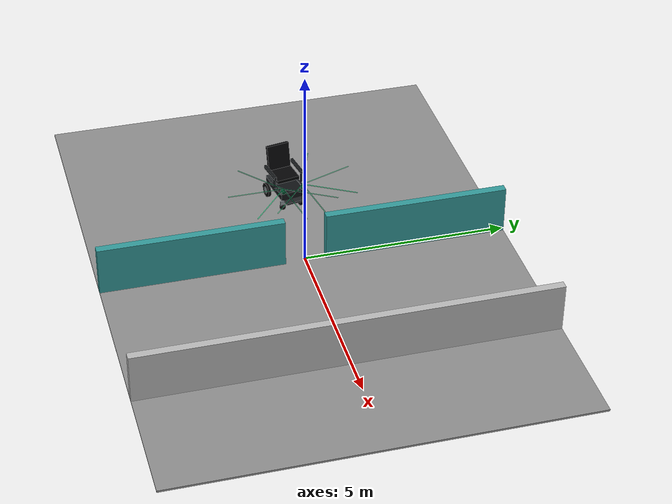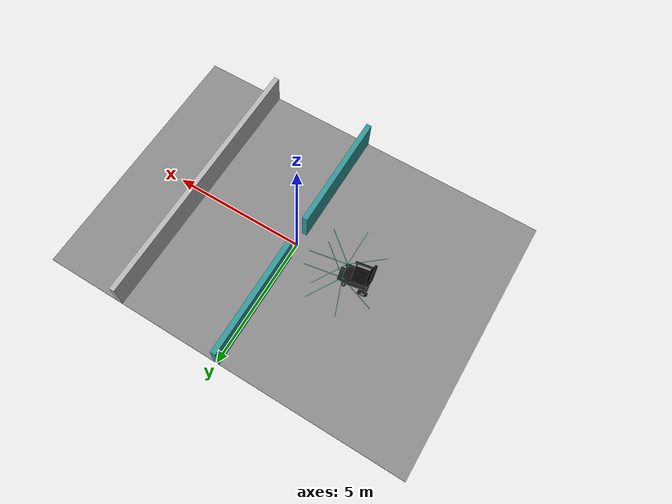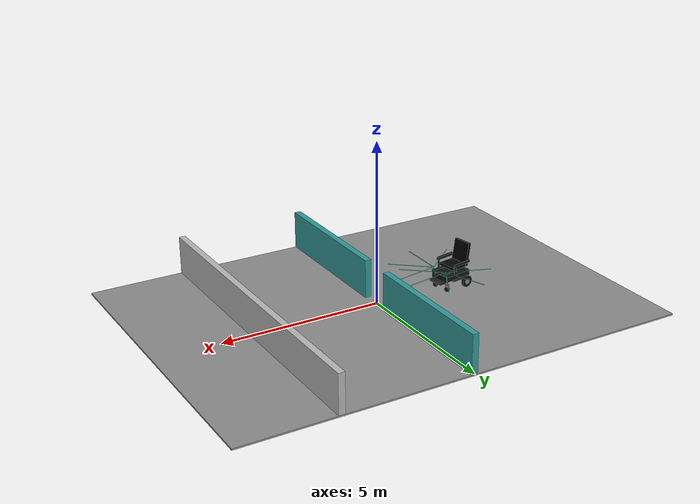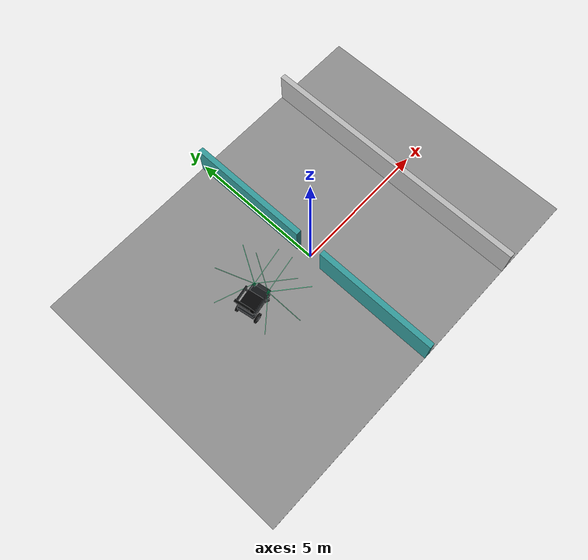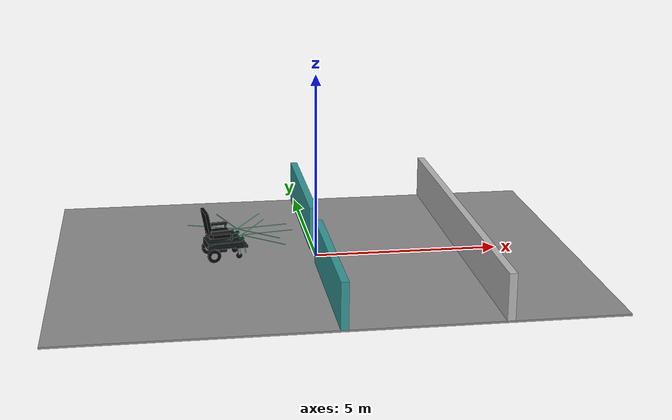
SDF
<?xml version="1.0"?>
<sdf version="1.6">
  <world name="unified_door">
    <physics name="1ms" type="ode"><max_step_size>0.001</max_step_size><real_time_factor>1</real_time_factor></physics>
    <gui fullscreen="0">
      <camera name="top_down">
        <pose>-6.7 0 9.0 0 1.5708 0</pose>
        <view_controller>orbit</view_controller>
      </camera>
    </gui>
    <light name="sun" type="directional"><pose>0 0 8 0 0 0</pose><diffuse>0.9 0.9 0.9 1</diffuse><direction>-0.4 0.2 -0.9</direction></light>
    <model name="floor"><static>true</static><pose>0 0 -0.025 0 0 0</pose><link name="link">
      <collision name="collision"><geometry><box><size>14 10 0.05</size></box></geometry></collision>
      <visual name="visual"><geometry><box><size>14 10 0.05</size></box></geometry><material><ambient>0.55 0.55 0.55 1</ambient><diffuse>0.55 0.55 0.55 1</diffuse></material></visual>
    </link></model>
    <!-- Inner faces at y=+/-0.5: exactly 1.0 m clear, 0.2 m wall thickness. -->
    <model name="left_jamb"><static>true</static><pose>0 2.75 0.6 0 0 0</pose><link name="link">
      <collision name="collision"><geometry><box><size>0.2 4.5 1.2</size></box></geometry></collision>
      <visual name="visual"><geometry><box><size>0.2 4.5 1.2</size></box></geometry><material><ambient>0.2 0.6 0.6 1</ambient><diffuse>0.2 0.6 0.6 1</diffuse></material></visual>
    </link></model>
    <model name="right_jamb"><static>true</static><pose>0 -2.75 0.6 0 0 0</pose><link name="link">
      <collision name="collision"><geometry><box><size>0.2 4.5 1.2</size></box></geometry></collision>
      <visual name="visual"><geometry><box><size>0.2 4.5 1.2</size></box></geometry><material><ambient>0.2 0.6 0.6 1</ambient><diffuse>0.2 0.6 0.6 1</diffuse></material></visual>
    </link></model>
    <model name="exit_wall"><static>true</static><pose>4 0 0.6 0 0 0</pose><link name="link">
      <collision name="collision"><geometry><box><size>0.2 10 1.2</size></box></geometry></collision>
      <visual name="visual"><geometry><box><size>0.2 10 1.2</size></box></geometry></visual>
    </link></model>
    <include><uri>model://smart_wheelchair</uri><pose>-2.5 0.15 0.04 0 0 0.174533</pose></include>
  </world>
</sdf>

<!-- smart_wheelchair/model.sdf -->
<sdf version="1.6">
  <model name="smart_wheelchair">
    <pose>0 0 0 0 0 0</pose>

    <link name="base_link">
      <inertial>
        <mass>65.0</mass>
        <inertia>
          <ixx>3.0</ixx><ixy>0</ixy><ixz>0</ixz>
          <iyy>4.0</iyy><iyz>0</iyz>
          <izz>3.0</izz>
        </inertia>
      </inertial>

      <collision name="base_collision">
        <pose>0 0 0.42 0 0 0</pose>
        <geometry><box><size>0.95 0.62 0.18</size></box></geometry>
      </collision>
      <visual name="base_visual">
        <pose>0 0 0.42 0 0 0</pose>
        <geometry><box><size>0.95 0.62 0.18</size></box></geometry>
        <material><ambient>0.06 0.07 0.08 1</ambient><diffuse>0.06 0.07 0.08 1</diffuse></material>
      </visual>

      <visual name="seat_visual">
        <pose>-0.12 0 0.68 0 0 0</pose>
        <geometry><box><size>0.60 0.58 0.09</size></box></geometry>
        <material><ambient>0.015 0.017 0.02 1</ambient><diffuse>0.015 0.017 0.02 1</diffuse></material>
      </visual>

      <visual name="backrest_visual">
        <pose>-0.43 0 1.00 0 -0.18 0</pose>
        <geometry><box><size>0.09 0.58 0.70</size></box></geometry>
        <material><ambient>0.015 0.017 0.02 1</ambient><diffuse>0.015 0.017 0.02 1</diffuse></material>
      </visual>

      <visual name="left_armrest_visual">
        <pose>-0.10 0.36 0.83 0 0 0</pose>
        <geometry><box><size>0.62 0.06 0.08</size></box></geometry>
        <material><ambient>0.08 0.09 0.10 1</ambient><diffuse>0.08 0.09 0.10 1</diffuse></material>
      </visual>

      <visual name="right_armrest_visual">
        <pose>-0.10 -0.36 0.83 0 0 0</pose>
        <geometry><box><size>0.62 0.06 0.08</size></box></geometry>
        <material><ambient>0.08 0.09 0.10 1</ambient><diffuse>0.08 0.09 0.10 1</diffuse></material>
      </visual>

      <visual name="left_arm_support_front_visual">
        <pose>0.16 0.36 0.67 0 0 0</pose>
        <geometry><box><size>0.045 0.045 0.28</size></box></geometry>
        <material><ambient>0.16 0.18 0.19 1</ambient><diffuse>0.16 0.18 0.19 1</diffuse></material>
      </visual>

      <visual name="right_arm_support_front_visual">
        <pose>0.16 -0.36 0.67 0 0 0</pose>
        <geometry><box><size>0.045 0.045 0.28</size></box></geometry>
        <material><ambient>0.16 0.18 0.19 1</ambient><diffuse>0.16 0.18 0.19 1</diffuse></material>
      </visual>

      <visual name="footplate_visual">
        <pose>0.48 0 0.30 0 0 0</pose>
        <geometry><box><size>0.32 0.48 0.045</size></box></geometry>
        <material><ambient>0.12 0.13 0.14 1</ambient><diffuse>0.12 0.13 0.14 1</diffuse></material>
      </visual>

      <visual name="left_frame_rail_visual">
        <pose>0.02 0.31 0.52 0 0 0</pose>
        <geometry><box><size>0.86 0.035 0.06</size></box></geometry>
        <material><ambient>0.13 0.15 0.16 1</ambient><diffuse>0.13 0.15 0.16 1</diffuse></material>
      </visual>

      <visual name="right_frame_rail_visual">
        <pose>0.02 -0.31 0.52 0 0 0</pose>
        <geometry><box><size>0.86 0.035 0.06</size></box></geometry>
        <material><ambient>0.13 0.15 0.16 1</ambient><diffuse>0.13 0.15 0.16 1</diffuse></material>
      </visual>

      <visual name="battery_visual">
        <pose>-0.15 0 0.27 0 0 0</pose>
        <geometry><box><size>0.42 0.44 0.12</size></box></geometry>
        <material><ambient>0.08 0.09 0.10 1</ambient><diffuse>0.08 0.09 0.10 1</diffuse></material>
      </visual>

      <visual name="left_lidar_body_visual">
        <pose>0.46 0.26 0.56 0 0 0</pose>
        <geometry><box><size>0.10 0.08 0.055</size></box></geometry>
        <material><ambient>0.02 0.30 0.18 1</ambient><diffuse>0.02 0.30 0.18 1</diffuse></material>
      </visual>

      <visual name="right_lidar_body_visual">
        <pose>0.46 -0.26 0.56 0 0 0</pose>
        <geometry><box><size>0.10 0.08 0.055</size></box></geometry>
        <material><ambient>0.02 0.30 0.18 1</ambient><diffuse>0.02 0.30 0.18 1</diffuse></material>
      </visual>

      <visual name="left_lidar_ray_minus50_visual">
        <pose>0.910 -0.276 0.660 0 0 -0.8727</pose>
        <geometry><box><size>1.40 0.018 0.012</size></box></geometry>
        <material><ambient>0.0 0.9 0.48 0.38</ambient><diffuse>0.0 0.9 0.48 0.38</diffuse></material>
      </visual>

      <visual name="left_lidar_ray_0_visual">
        <pose>1.160 0.260 0.660 0 0 0.0000</pose>
        <geometry><box><size>1.40 0.018 0.012</size></box></geometry>
        <material><ambient>0.0 0.9 0.48 0.38</ambient><diffuse>0.0 0.9 0.48 0.38</diffuse></material>
      </visual>

      <visual name="left_lidar_ray_50_visual">
        <pose>0.910 0.796 0.660 0 0 0.8727</pose>
        <geometry><box><size>1.40 0.018 0.012</size></box></geometry>
        <material><ambient>0.0 1.0 0.55 0.50</ambient><diffuse>0.0 1.0 0.55 0.50</diffuse></material>
      </visual>

      <visual name="left_lidar_ray_100_visual">
        <pose>0.338 0.949 0.660 0 0 1.7453</pose>
        <geometry><box><size>1.40 0.018 0.012</size></box></geometry>
        <material><ambient>0.0 0.9 0.48 0.38</ambient><diffuse>0.0 0.9 0.48 0.38</diffuse></material>
      </visual>

      <visual name="left_lidar_ray_150_visual">
        <pose>-0.146 0.610 0.660 0 0 2.6180</pose>
        <geometry><box><size>1.40 0.018 0.012</size></box></geometry>
        <material><ambient>0.0 0.9 0.48 0.38</ambient><diffuse>0.0 0.9 0.48 0.38</diffuse></material>
      </visual>

      <visual name="right_lidar_ray_minus150_visual">
        <pose>-0.146 -0.610 0.660 0 0 -2.6180</pose>
        <geometry><box><size>1.40 0.018 0.012</size></box></geometry>
        <material><ambient>0.0 0.9 0.48 0.38</ambient><diffuse>0.0 0.9 0.48 0.38</diffuse></material>
      </visual>

      <visual name="right_lidar_ray_minus100_visual">
        <pose>0.338 -0.949 0.660 0 0 -1.7453</pose>
        <geometry><box><size>1.40 0.018 0.012</size></box></geometry>
        <material><ambient>0.0 0.9 0.48 0.38</ambient><diffuse>0.0 0.9 0.48 0.38</diffuse></material>
      </visual>

      <visual name="right_lidar_ray_minus50_visual">
        <pose>0.910 -0.796 0.660 0 0 -0.8727</pose>
        <geometry><box><size>1.40 0.018 0.012</size></box></geometry>
        <material><ambient>0.0 1.0 0.55 0.50</ambient><diffuse>0.0 1.0 0.55 0.50</diffuse></material>
      </visual>

      <visual name="right_lidar_ray_0_visual">
        <pose>1.160 -0.260 0.660 0 0 0.0000</pose>
        <geometry><box><size>1.40 0.018 0.012</size></box></geometry>
        <material><ambient>0.0 0.9 0.48 0.38</ambient><diffuse>0.0 0.9 0.48 0.38</diffuse></material>
      </visual>

      <visual name="right_lidar_ray_50_visual">
        <pose>0.910 0.276 0.660 0 0 0.8727</pose>
        <geometry><box><size>1.40 0.018 0.012</size></box></geometry>
        <material><ambient>0.0 0.9 0.48 0.38</ambient><diffuse>0.0 0.9 0.48 0.38</diffuse></material>
      </visual>

      <sensor name="left_lidar" type="gpu_ray">
        <pose>0.46 0.26 0.56 0 0 0</pose>
        <update_rate>10</update_rate>
        <ray>
          <scan>
            <horizontal>
              <samples>401</samples>
              <resolution>1</resolution>
              <min_angle>-0.87266</min_angle>
              <max_angle>2.61799</max_angle>
            </horizontal>
          </scan>
          <range>
            <min>0.08</min>
            <max>5.0</max>
            <resolution>0.01</resolution>
          </range>
        </ray>
        <plugin name="left_lidar_ros" filename="libgazebo_ros_gpu_laser.so">
          <robotNamespace>/</robotNamespace>
          <topicName>/scan_left</topicName>
          <frameName>left_lidar</frameName>
        </plugin>
        <always_on>true</always_on>
        <visualize>true</visualize>
      </sensor>

      <sensor name="right_lidar" type="gpu_ray">
        <pose>0.46 -0.26 0.56 0 0 0</pose>
        <update_rate>10</update_rate>
        <ray>
          <scan>
            <horizontal>
              <samples>401</samples>
              <resolution>1</resolution>
              <min_angle>-2.61799</min_angle>
              <max_angle>0.87266</max_angle>
            </horizontal>
          </scan>
          <range>
            <min>0.08</min>
            <max>5.0</max>
            <resolution>0.01</resolution>
          </range>
        </ray>
        <plugin name="right_lidar_ros" filename="libgazebo_ros_gpu_laser.so">
          <robotNamespace>/</robotNamespace>
          <topicName>/scan_right</topicName>
          <frameName>right_lidar</frameName>
        </plugin>
        <always_on>true</always_on>
        <visualize>true</visualize>
      </sensor>

      <sensor name="rear_camera" type="camera">
        <pose>-0.58 0 0.72 0 0.60 3.1416</pose>
        <update_rate>15</update_rate>
        <camera>
          <horizontal_fov>2.094</horizontal_fov>
          <image>
            <width>640</width>
            <height>360</height>
            <format>R8G8B8</format>
          </image>
          <clip>
            <near>0.05</near>
            <far>10.0</far>
          </clip>
        </camera>
        <plugin name="rear_camera_ros" filename="libgazebo_ros_camera.so">
          <robotNamespace>/</robotNamespace>
          <cameraName>camera/rear</cameraName>
          <imageTopicName>image</imageTopicName>
          <cameraInfoTopicName>camera_info</cameraInfoTopicName>
          <frameName>rear_camera</frameName>
        </plugin>
        <always_on>true</always_on>
      </sensor>
    </link>

    <link name="left_rear_wheel">
      <pose>-0.33 0.36 0.18 0 0 0</pose>
      <inertial><mass>2.0</mass><inertia><ixx>0.02</ixx><iyy>0.02</iyy><izz>0.02</izz></inertia></inertial>
      <collision name="collision"><pose>0 0 0 1.5708 0 0</pose><geometry><cylinder><radius>0.18</radius><length>0.07</length></cylinder></geometry></collision>
      <visual name="visual"><pose>0 0 0 1.5708 0 0</pose><geometry><cylinder><radius>0.18</radius><length>0.07</length></cylinder></geometry><material><ambient>0.03 0.03 0.03 1</ambient><diffuse>0.03 0.03 0.03 1</diffuse></material></visual>
      <visual name="left_rear_hub_visual"><pose>0 0 0 1.5708 0 0</pose><geometry><cylinder><radius>0.09</radius><length>0.08</length></cylinder></geometry><material><ambient>0.55 0.58 0.60 1</ambient><diffuse>0.55 0.58 0.60 1</diffuse></material></visual>
    </link>

    <link name="right_rear_wheel">
      <pose>-0.33 -0.36 0.18 0 0 0</pose>
      <inertial><mass>2.0</mass><inertia><ixx>0.02</ixx><iyy>0.02</iyy><izz>0.02</izz></inertia></inertial>
      <collision name="collision"><pose>0 0 0 1.5708 0 0</pose><geometry><cylinder><radius>0.18</radius><length>0.07</length></cylinder></geometry></collision>
      <visual name="visual"><pose>0 0 0 1.5708 0 0</pose><geometry><cylinder><radius>0.18</radius><length>0.07</length></cylinder></geometry><material><ambient>0.03 0.03 0.03 1</ambient><diffuse>0.03 0.03 0.03 1</diffuse></material></visual>
      <visual name="right_rear_hub_visual"><pose>0 0 0 1.5708 0 0</pose><geometry><cylinder><radius>0.09</radius><length>0.08</length></cylinder></geometry><material><ambient>0.55 0.58 0.60 1</ambient><diffuse>0.55 0.58 0.60 1</diffuse></material></visual>
    </link>

    <link name="left_front_caster">
      <pose>0.38 0.25 0.08 0 0 0</pose>
      <inertial><mass>0.6</mass><inertia><ixx>0.002</ixx><iyy>0.002</iyy><izz>0.002</izz></inertia></inertial>
      <collision name="collision"><geometry><sphere><radius>0.08</radius></sphere></geometry></collision>
      <visual name="visual"><geometry><sphere><radius>0.08</radius></sphere></geometry><material><ambient>0.05 0.05 0.055 1</ambient><diffuse>0.05 0.05 0.055 1</diffuse></material></visual>
      <visual name="left_caster_fork_visual"><pose>0 0 0.11 0 0 0</pose><geometry><box><size>0.05 0.12 0.12</size></box></geometry><material><ambient>0.55 0.58 0.60 1</ambient><diffuse>0.55 0.58 0.60 1</diffuse></material></visual>
    </link>

    <link name="right_front_caster">
      <pose>0.38 -0.25 0.08 0 0 0</pose>
      <inertial><mass>0.6</mass><inertia><ixx>0.002</ixx><iyy>0.002</iyy><izz>0.002</izz></inertia></inertial>
      <collision name="collision"><geometry><sphere><radius>0.08</radius></sphere></geometry></collision>
      <visual name="visual"><geometry><sphere><radius>0.08</radius></sphere></geometry><material><ambient>0.05 0.05 0.055 1</ambient><diffuse>0.05 0.05 0.055 1</diffuse></material></visual>
      <visual name="right_caster_fork_visual"><pose>0 0 0.11 0 0 0</pose><geometry><box><size>0.05 0.12 0.12</size></box></geometry><material><ambient>0.55 0.58 0.60 1</ambient><diffuse>0.55 0.58 0.60 1</diffuse></material></visual>
    </link>

    <link name="rear_axle">
      <pose>-0.33 0 0 0 0 0</pose>
      <inertial>
        <mass>0.001</mass>
        <inertia><ixx>0.000001</ixx><iyy>0.000001</iyy><izz>0.000001</izz></inertia>
      </inertial>
    </link>
    <joint name="rear_axle_joint" type="fixed">
      <parent>base_link</parent>
      <child>rear_axle</child>
    </joint>

    <joint name="left_rear_wheel_joint" type="revolute">
      <parent>base_link</parent>
      <child>left_rear_wheel</child>
      <axis>
        <xyz>0 1 0</xyz>
        <limit><lower>-1e16</lower><upper>1e16</upper></limit>
      </axis>
    </joint>

    <joint name="right_rear_wheel_joint" type="revolute">
      <parent>base_link</parent>
      <child>right_rear_wheel</child>
      <axis>
        <xyz>0 1 0</xyz>
        <limit><lower>-1e16</lower><upper>1e16</upper></limit>
      </axis>
    </joint>

    <joint name="left_front_caster_joint" type="ball">
      <parent>base_link</parent>
      <child>left_front_caster</child>
    </joint>

    <joint name="right_front_caster_joint" type="ball">
      <parent>base_link</parent>
      <child>right_front_caster</child>
    </joint>

    <plugin name="differential_drive_controller" filename="libgazebo_ros_diff_drive.so">
      <robotNamespace>/</robotNamespace>
      <alwaysOn>true</alwaysOn>
      <updateRate>50</updateRate>
      <leftJoint>left_rear_wheel_joint</leftJoint>
      <rightJoint>right_rear_wheel_joint</rightJoint>
      <wheelSeparation>0.72</wheelSeparation>
      <wheelDiameter>0.36</wheelDiameter>
      <commandTopic>/cmd_vel</commandTopic>
      <odometryTopic>/diff_drive/odom</odometryTopic>
      <odometryFrame>odom</odometryFrame>
      <robotBaseFrame>rear_axle</robotBaseFrame>
      <publishWheelTF>false</publishWheelTF>
      <publishOdomTF>false</publishOdomTF>
      <odometrySource>world</odometrySource>
    </plugin>

    <!-- P3D measures the link itself; diff-drive world odometry measures the model origin. -->
    <plugin name="rear_axle_ground_truth" filename="libgazebo_ros_p3d.so">
      <robotNamespace>/</robotNamespace>
      <bodyName>rear_axle</bodyName>
      <topicName>/rear_axle_ground_truth</topicName>
      <frameName>world</frameName>
      <localTwist>true</localTwist>
      <updateRate>50</updateRate>
      <gaussianNoise>0</gaussianNoise>
    </plugin>

    <plugin filename="libSmartWheelChairTrajectoryPreview.so" name="smart_wheelchair_gazebo::TrajectoryPreviewPlugin">
      <cmd_topic>/cmd_vel_raw</cmd_topic>
      <filtered_cmd_topic>/cmd_vel</filtered_cmd_topic>
      <prediction_seconds>3.0</prediction_seconds>
      <step_seconds>0.3</step_seconds>
      <command_timeout_s>0.5</command_timeout_s>
      <rear_axle_x_m>-0.33</rear_axle_x_m>
      <wheel_separation_m>0.72</wheel_separation_m>
      <z_m>0.18</z_m>
    </plugin>
  </model>
</sdf>
